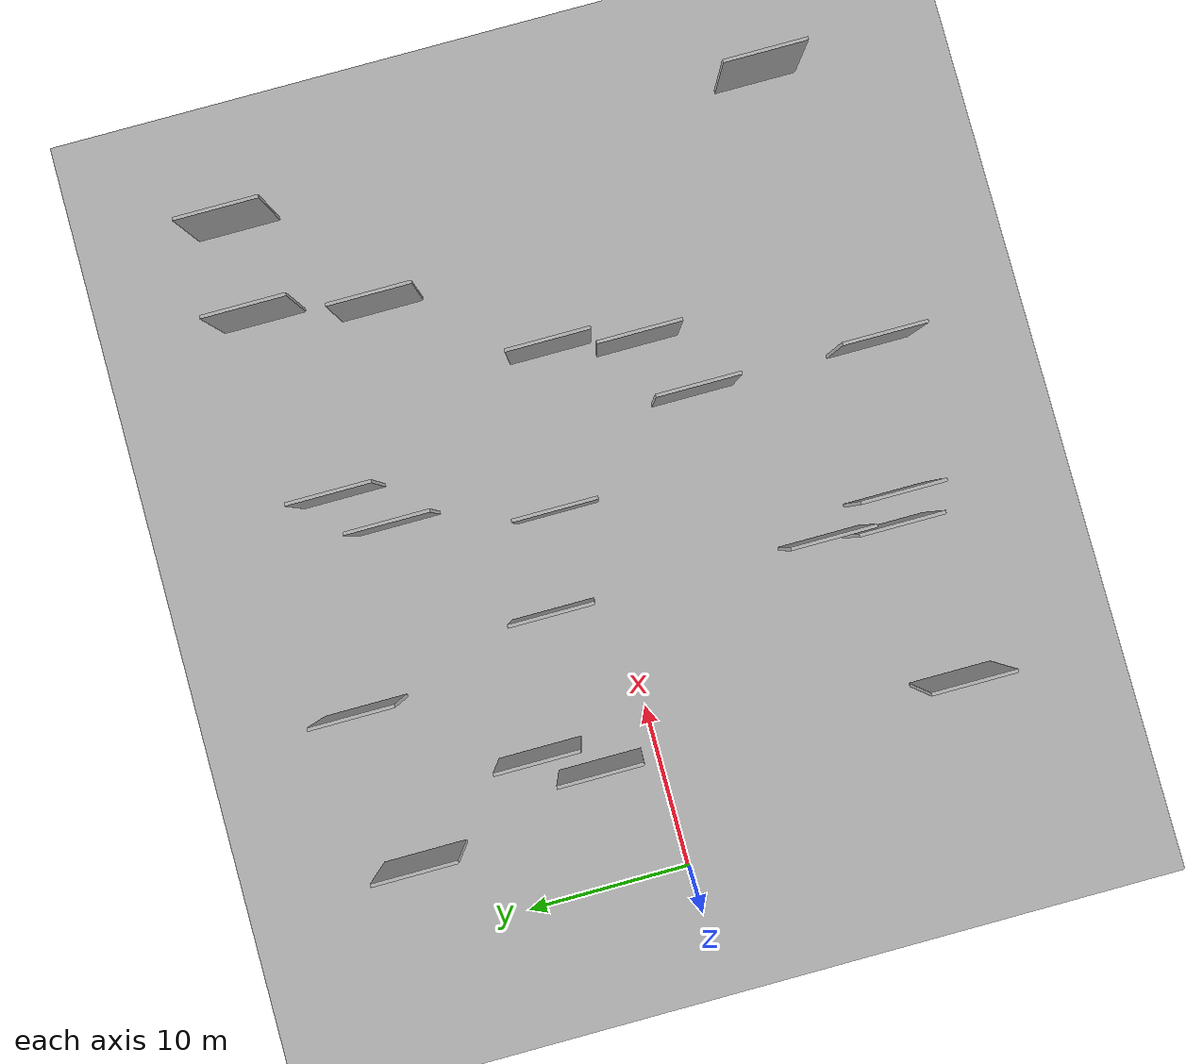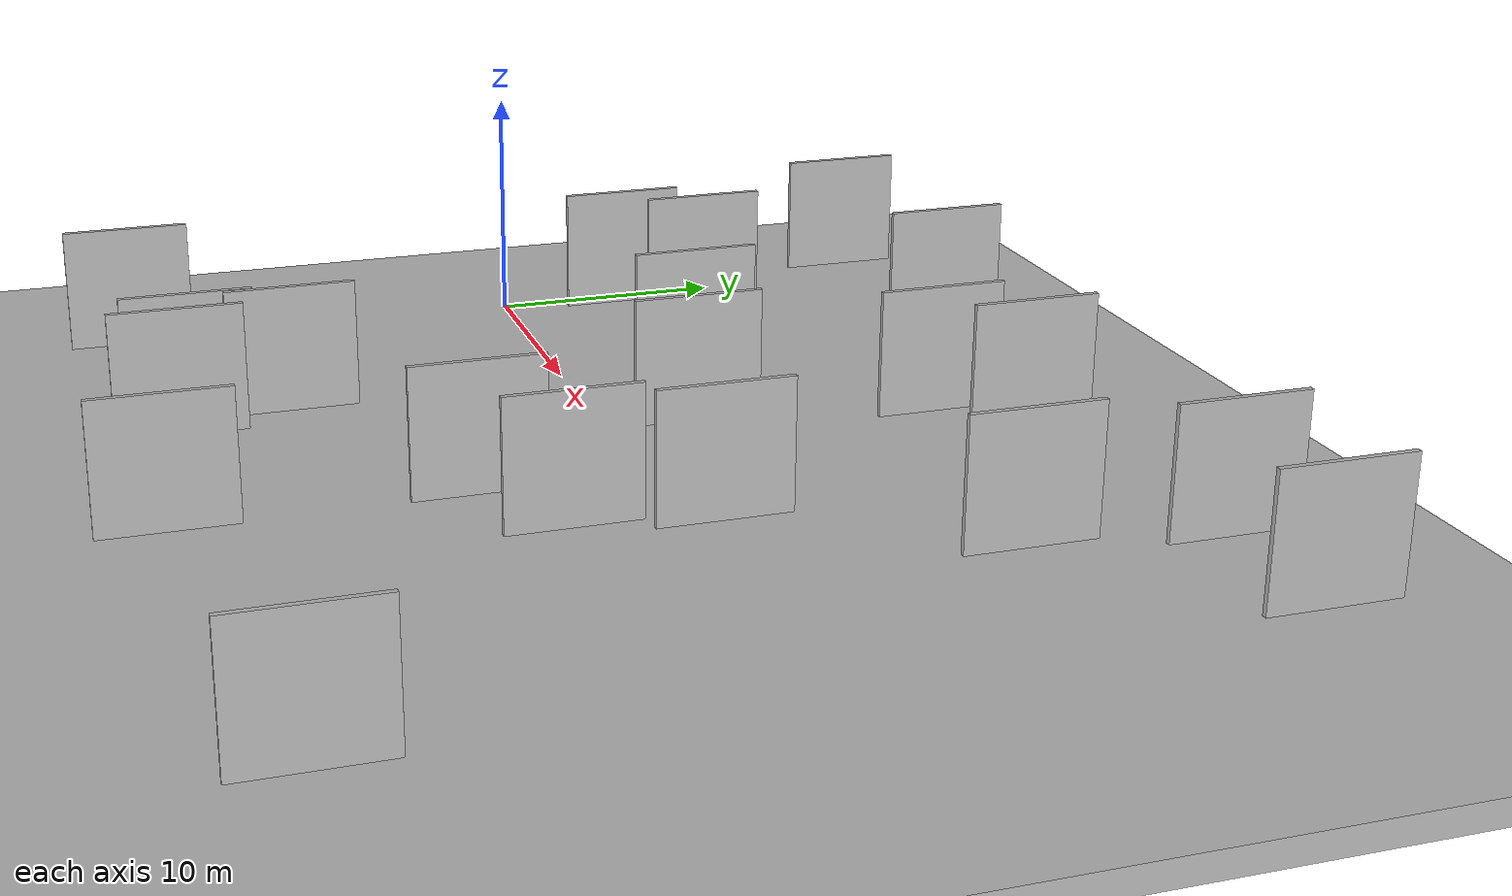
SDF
<?xml version="1.0" encoding="utf-8"?>

<sdf version="1.6">

   <world name="default">

      <gui fullscreen="0">

         <camera name="user_camera">

            <pose>-15 0 4.57585 0 0 0</pose>

            <view_controller>orbit</view_controller>

         </camera>

      </gui>

      <scene>

         <sky>

           <clouds>

             <speed>12</speed>

           </clouds>

         </sky>

         <ambient>0.4 0.4 0.4 1</ambient>

         <background>0.7 0.7 0.7 1</background>

         <shadows>1</shadows>

      </scene>

      <gravity>0 0 -9.8066</gravity>

      <magnetic_field>6e-06 2.3e-05 -4.2e-05</magnetic_field>

      <physics default="0" name="default_physics" type="ode">

         <ode>

            <solver>

               <type>quick</type>

               <iters>10</iters>

               <sor>1.0</sor>

               <use_dynamic_moi_rescaling>0</use_dynamic_moi_rescaling>

            </solver>

            <constraints>

               <cfm>0</cfm>

               <erp>0.2</erp>

               <contact_max_correcting_vel>100</contact_max_correcting_vel>

               <contact_surface_layer>0.001</contact_surface_layer>

            </constraints>

         </ode>

         <max_step_size>0.004</max_step_size>

         <real_time_factor>1</real_time_factor>

         <real_time_update_rate>250</real_time_update_rate>

      </physics>

      <light name="sun" type="directional">

         <cast_shadows>1</cast_shadows>

         <pose>0 0 10 0 0 0</pose>

         <diffuse>0.8 0.8 0.8 1</diffuse>

         <specular>0.2 0.2 0.2 1</specular>

         <attenuation>

            <range>1000</range>

            <constant>0.9</constant>

            <linear>0.01</linear>

            <quadratic>0.001</quadratic>

         </attenuation>

         <direction>-0.5 0.1 -0.9</direction>

      </light>

      <include>

         <name>ground_plane_1</name>

         <uri>model://HANNAS_ground_plane</uri>

         <pose>0 0 0  0 0 0</pose>

      </include>

      <include>

         <name>ground_plane_2</name>

         <uri>model://HANNAS_ground_plane</uri>

         <pose>100 0 0  0 0 0</pose>

      </include>

      <model name="HANNAS_wall_1">

         <static>1</static>

         <pose frame="">16.9462 -16.4166 2.5 0.000000 0.000000 1.570796</pose>

         <link name="link">

            <pose frame="">0 0 2.50 0 0 0</pose>

            <collision name="collision">

               <geometry>

                  <box>

                     <size>5.00 0.2 5.00</size>

                  </box>

               </geometry>

               <max_contacts>10</max_contacts>

               <surface>

                  <contact>

                     <ode/>

                  </contact>

                  <bounce/>

                  <friction>

                     <torsional>

                        <ode/>

                     </torsional>

                     <ode/>

                  </friction>

               </surface>

            </collision>

            <visual name="visual">

               <cast_shadows>0</cast_shadows>

               <geometry>

                  <box>

                     <size>5.00 0.2 5.00</size>

                  </box>

               </geometry>

               <material>

                  <script>

                     <uri>model://HANNAS_wall/materials/scripts</uri>

                     <uri>model://HANNAS_wall/materials/textures</uri>

                     <name>vrc/HANNAS_wall</name>

                  </script>

               </material>

            </visual>

            <self_collide>0</self_collide>

            <enable_wind>0</enable_wind>

            <kinematic>0</kinematic>

         </link>

      </model>

      <model name="HANNAS_wall_2">

         <static>1</static>

         <pose frame="">14.6405 15.9133 2.5 0.000000 0.000000 1.570796</pose>

         <link name="link">

            <pose frame="">0 0 2.50 0 0 0</pose>

            <collision name="collision">

               <geometry>

                  <box>

                     <size>5.00 0.2 5.00</size>

                  </box>

               </geometry>

               <max_contacts>10</max_contacts>

               <surface>

                  <contact>

                     <ode/>

                  </contact>

                  <bounce/>

                  <friction>

                     <torsional>

                        <ode/>

                     </torsional>

                     <ode/>

                  </friction>

               </surface>

            </collision>

            <visual name="visual">

               <cast_shadows>0</cast_shadows>

               <geometry>

                  <box>

                     <size>5.00 0.2 5.00</size>

                  </box>

               </geometry>

               <material>

                  <script>

                     <uri>model://HANNAS_wall/materials/scripts</uri>

                     <uri>model://HANNAS_wall/materials/textures</uri>

                     <name>vrc/HANNAS_wall</name>

                  </script>

               </material>

            </visual>

            <self_collide>0</self_collide>

            <enable_wind>0</enable_wind>

            <kinematic>0</kinematic>

         </link>

      </model>

      <model name="HANNAS_wall_3">

         <static>1</static>

         <pose frame="">32.1124 -0.0720 2.5 0.000000 0.000000 1.570796</pose>

         <link name="link">

            <pose frame="">0 0 2.50 0 0 0</pose>

            <collision name="collision">

               <geometry>

                  <box>

                     <size>5.00 0.2 5.00</size>

                  </box>

               </geometry>

               <max_contacts>10</max_contacts>

               <surface>

                  <contact>

                     <ode/>

                  </contact>

                  <bounce/>

                  <friction>

                     <torsional>

                        <ode/>

                     </torsional>

                     <ode/>

                  </friction>

               </surface>

            </collision>

            <visual name="visual">

               <cast_shadows>0</cast_shadows>

               <geometry>

                  <box>

                     <size>5.00 0.2 5.00</size>

                  </box>

               </geometry>

               <material>

                  <script>

                     <uri>model://HANNAS_wall/materials/scripts</uri>

                     <uri>model://HANNAS_wall/materials/textures</uri>

                     <name>vrc/HANNAS_wall</name>

                  </script>

               </material>

            </visual>

            <self_collide>0</self_collide>

            <enable_wind>0</enable_wind>

            <kinematic>0</kinematic>

         </link>

      </model>

      <model name="HANNAS_wall_4">

         <static>1</static>

         <pose frame="">22.8124 2.0310 2.5 0.000000 0.000000 1.570796</pose>

         <link name="link">

            <pose frame="">0 0 2.50 0 0 0</pose>

            <collision name="collision">

               <geometry>

                  <box>

                     <size>5.00 0.2 5.00</size>

                  </box>

               </geometry>

               <max_contacts>10</max_contacts>

               <surface>

                  <contact>

                     <ode/>

                  </contact>

                  <bounce/>

                  <friction>

                     <torsional>

                        <ode/>

                     </torsional>

                     <ode/>

                  </friction>

               </surface>

            </collision>

            <visual name="visual">

               <cast_shadows>0</cast_shadows>

               <geometry>

                  <box>

                     <size>5.00 0.2 5.00</size>

                  </box>

               </geometry>

               <material>

                  <script>

                     <uri>model://HANNAS_wall/materials/scripts</uri>

                     <uri>model://HANNAS_wall/materials/textures</uri>

                     <name>vrc/HANNAS_wall</name>

                  </script>

               </material>

            </visual>

            <self_collide>0</self_collide>

            <enable_wind>0</enable_wind>

            <kinematic>0</kinematic>

         </link>

      </model>

      <model name="HANNAS_wall_5">

         <static>1</static>

         <pose frame="">17.2191 -12.5391 2.5 0.000000 0.000000 1.570796</pose>

         <link name="link">

            <pose frame="">0 0 2.50 0 0 0</pose>

            <collision name="collision">

               <geometry>

                  <box>

                     <size>5.00 0.2 5.00</size>

                  </box>

               </geometry>

               <max_contacts>10</max_contacts>

               <surface>

                  <contact>

                     <ode/>

                  </contact>

                  <bounce/>

                  <friction>

                     <torsional>

                        <ode/>

                     </torsional>

                     <ode/>

                  </friction>

               </surface>

            </collision>

            <visual name="visual">

               <cast_shadows>0</cast_shadows>

               <geometry>

                  <box>

                     <size>5.00 0.2 5.00</size>

                  </box>

               </geometry>

               <material>

                  <script>

                     <uri>model://HANNAS_wall/materials/scripts</uri>

                     <uri>model://HANNAS_wall/materials/textures</uri>

                     <name>vrc/HANNAS_wall</name>

                  </script>

               </material>

            </visual>

            <self_collide>0</self_collide>

            <enable_wind>0</enable_wind>

            <kinematic>0</kinematic>

         </link>

      </model>

      <model name="HANNAS_wall_6">

         <static>1</static>

         <pose frame="">7.9515 3.4358 2.5 0.000000 0.000000 1.570796</pose>

         <link name="link">

            <pose frame="">0 0 2.50 0 0 0</pose>

            <collision name="collision">

               <geometry>

                  <box>

                     <size>5.00 0.2 5.00</size>

                  </box>

               </geometry>

               <max_contacts>10</max_contacts>

               <surface>

                  <contact>

                     <ode/>

                  </contact>

                  <bounce/>

                  <friction>

                     <torsional>

                        <ode/>

                     </torsional>

                     <ode/>

                  </friction>

               </surface>

            </collision>

            <visual name="visual">

               <cast_shadows>0</cast_shadows>

               <geometry>

                  <box>

                     <size>5.00 0.2 5.00</size>

                  </box>

               </geometry>

               <material>

                  <script>

                     <uri>model://HANNAS_wall/materials/scripts</uri>

                     <uri>model://HANNAS_wall/materials/textures</uri>

                     <name>vrc/HANNAS_wall</name>

                  </script>

               </material>

            </visual>

            <self_collide>0</self_collide>

            <enable_wind>0</enable_wind>

            <kinematic>0</kinematic>

         </link>

      </model>

      <model name="HANNAS_wall_7">

         <static>1</static>

         <pose frame="">18.6666 -16.9869 2.5 0.000000 0.000000 1.570796</pose>

         <link name="link">

            <pose frame="">0 0 2.50 0 0 0</pose>

            <collision name="collision">

               <geometry>

                  <box>

                     <size>5.00 0.2 5.00</size>

                  </box>

               </geometry>

               <max_contacts>10</max_contacts>

               <surface>

                  <contact>

                     <ode/>

                  </contact>

                  <bounce/>

                  <friction>

                     <torsional>

                        <ode/>

                     </torsional>

                     <ode/>

                  </friction>

               </surface>

            </collision>

            <visual name="visual">

               <cast_shadows>0</cast_shadows>

               <geometry>

                  <box>

                     <size>5.00 0.2 5.00</size>

                  </box>

               </geometry>

               <material>

                  <script>

                     <uri>model://HANNAS_wall/materials/scripts</uri>

                     <uri>model://HANNAS_wall/materials/textures</uri>

                     <name>vrc/HANNAS_wall</name>

                  </script>

               </material>

            </visual>

            <self_collide>0</self_collide>

            <enable_wind>0</enable_wind>

            <kinematic>0</kinematic>

         </link>

      </model>

      <model name="HANNAS_wall_8">

         <static>1</static>

         <pose frame="">17.2159 3.7650 2.5 0.000000 0.000000 1.570796</pose>

         <link name="link">

            <pose frame="">0 0 2.50 0 0 0</pose>

            <collision name="collision">

               <geometry>

                  <box>

                     <size>5.00 0.2 5.00</size>

                  </box>

               </geometry>

               <max_contacts>10</max_contacts>

               <surface>

                  <contact>

                     <ode/>

                  </contact>

                  <bounce/>

                  <friction>

                     <torsional>

                        <ode/>

                     </torsional>

                     <ode/>

                  </friction>

               </surface>

            </collision>

            <visual name="visual">

               <cast_shadows>0</cast_shadows>

               <geometry>

                  <box>

                     <size>5.00 0.2 5.00</size>

                  </box>

               </geometry>

               <material>

                  <script>

                     <uri>model://HANNAS_wall/materials/scripts</uri>

                     <uri>model://HANNAS_wall/materials/textures</uri>

                     <name>vrc/HANNAS_wall</name>

                  </script>

               </material>

            </visual>

            <self_collide>0</self_collide>

            <enable_wind>0</enable_wind>

            <kinematic>0</kinematic>

         </link>

      </model>

      <model name="HANNAS_wall_9">

         <static>1</static>

         <pose frame="">24.5792 11.2520 2.5 0.000000 0.000000 1.570796</pose>

         <link name="link">

            <pose frame="">0 0 2.50 0 0 0</pose>

            <collision name="collision">

               <geometry>

                  <box>

                     <size>5.00 0.2 5.00</size>

                  </box>

               </geometry>

               <max_contacts>10</max_contacts>

               <surface>

                  <contact>

                     <ode/>

                  </contact>

                  <bounce/>

                  <friction>

                     <torsional>

                        <ode/>

                     </torsional>

                     <ode/>

                  </friction>

               </surface>

            </collision>

            <visual name="visual">

               <cast_shadows>0</cast_shadows>

               <geometry>

                  <box>

                     <size>5.00 0.2 5.00</size>

                  </box>

               </geometry>

               <material>

                  <script>

                     <uri>model://HANNAS_wall/materials/scripts</uri>

                     <uri>model://HANNAS_wall/materials/textures</uri>

                     <name>vrc/HANNAS_wall</name>

                  </script>

               </material>

            </visual>

            <self_collide>0</self_collide>

            <enable_wind>0</enable_wind>

            <kinematic>0</kinematic>

         </link>

      </model>

      <model name="HANNAS_wall_10">

         <static>1</static>

         <pose frame="">38.4060 15.8887 2.5 0.000000 0.000000 1.570796</pose>

         <link name="link">

            <pose frame="">0 0 2.50 0 0 0</pose>

            <collision name="collision">

               <geometry>

                  <box>

                     <size>5.00 0.2 5.00</size>

                  </box>

               </geometry>

               <max_contacts>10</max_contacts>

               <surface>

                  <contact>

                     <ode/>

                  </contact>

                  <bounce/>

                  <friction>

                     <torsional>

                        <ode/>

                     </torsional>

                     <ode/>

                  </friction>

               </surface>

            </collision>

            <visual name="visual">

               <cast_shadows>0</cast_shadows>

               <geometry>

                  <box>

                     <size>5.00 0.2 5.00</size>

                  </box>

               </geometry>

               <material>

                  <script>

                     <uri>model://HANNAS_wall/materials/scripts</uri>

                     <uri>model://HANNAS_wall/materials/textures</uri>

                     <name>vrc/HANNAS_wall</name>

                  </script>

               </material>

            </visual>

            <self_collide>0</self_collide>

            <enable_wind>0</enable_wind>

            <kinematic>0</kinematic>

         </link>

      </model>

      <model name="HANNAS_wall_11">

         <static>1</static>

         <pose frame="">27.4920 -18.4001 2.5 0.000000 0.000000 1.570796</pose>

         <link name="link">

            <pose frame="">0 0 2.50 0 0 0</pose>

            <collision name="collision">

               <geometry>

                  <box>

                     <size>5.00 0.2 5.00</size>

                  </box>

               </geometry>

               <max_contacts>10</max_contacts>

               <surface>

                  <contact>

                     <ode/>

                  </contact>

                  <bounce/>

                  <friction>

                     <torsional>

                        <ode/>

                     </torsional>

                     <ode/>

                  </friction>

               </surface>

            </collision>

            <visual name="visual">

               <cast_shadows>0</cast_shadows>

               <geometry>

                  <box>

                     <size>5.00 0.2 5.00</size>

                  </box>

               </geometry>

               <material>

                  <script>

                     <uri>model://HANNAS_wall/materials/scripts</uri>

                     <uri>model://HANNAS_wall/materials/textures</uri>

                     <name>vrc/HANNAS_wall</name>

                  </script>

               </material>

            </visual>

            <self_collide>0</self_collide>

            <enable_wind>0</enable_wind>

            <kinematic>0</kinematic>

         </link>

      </model>

      <model name="HANNAS_wall_12">

         <static>1</static>

         <pose frame="">44.1719 15.9756 2.5 0.000000 0.000000 1.570796</pose>

         <link name="link">

            <pose frame="">0 0 2.50 0 0 0</pose>

            <collision name="collision">

               <geometry>

                  <box>

                     <size>5.00 0.2 5.00</size>

                  </box>

               </geometry>

               <max_contacts>10</max_contacts>

               <surface>

                  <contact>

                     <ode/>

                  </contact>

                  <bounce/>

                  <friction>

                     <torsional>

                        <ode/>

                     </torsional>

                     <ode/>

                  </friction>

               </surface>

            </collision>

            <visual name="visual">

               <cast_shadows>0</cast_shadows>

               <geometry>

                  <box>

                     <size>5.00 0.2 5.00</size>

                  </box>

               </geometry>

               <material>

                  <script>

                     <uri>model://HANNAS_wall/materials/scripts</uri>

                     <uri>model://HANNAS_wall/materials/textures</uri>

                     <name>vrc/HANNAS_wall</name>

                  </script>

               </material>

            </visual>

            <self_collide>0</self_collide>

            <enable_wind>0</enable_wind>

            <kinematic>0</kinematic>

         </link>

      </model>

      <model name="HANNAS_wall_13">

         <static>1</static>

         <pose frame="">9.5507 6.6470 2.5 0.000000 0.000000 1.570796</pose>

         <link name="link">

            <pose frame="">0 0 2.50 0 0 0</pose>

            <collision name="collision">

               <geometry>

                  <box>

                     <size>5.00 0.2 5.00</size>

                  </box>

               </geometry>

               <max_contacts>10</max_contacts>

               <surface>

                  <contact>

                     <ode/>

                  </contact>

                  <bounce/>

                  <friction>

                     <torsional>

                        <ode/>

                     </torsional>

                     <ode/>

                  </friction>

               </surface>

            </collision>

            <visual name="visual">

               <cast_shadows>0</cast_shadows>

               <geometry>

                  <box>

                     <size>5.00 0.2 5.00</size>

                  </box>

               </geometry>

               <material>

                  <script>

                     <uri>model://HANNAS_wall/materials/scripts</uri>

                     <uri>model://HANNAS_wall/materials/textures</uri>

                     <name>vrc/HANNAS_wall</name>

                  </script>

               </material>

            </visual>

            <self_collide>0</self_collide>

            <enable_wind>0</enable_wind>

            <kinematic>0</kinematic>

         </link>

      </model>

      <model name="HANNAS_wall_14">

         <static>1</static>

         <pose frame="">5.4799 14.7228 2.5 0.000000 0.000000 1.570796</pose>

         <link name="link">

            <pose frame="">0 0 2.50 0 0 0</pose>

            <collision name="collision">

               <geometry>

                  <box>

                     <size>5.00 0.2 5.00</size>

                  </box>

               </geometry>

               <max_contacts>10</max_contacts>

               <surface>

                  <contact>

                     <ode/>

                  </contact>

                  <bounce/>

                  <friction>

                     <torsional>

                        <ode/>

                     </torsional>

                     <ode/>

                  </friction>

               </surface>

            </collision>

            <visual name="visual">

               <cast_shadows>0</cast_shadows>

               <geometry>

                  <box>

                     <size>5.00 0.2 5.00</size>

                  </box>

               </geometry>

               <material>

                  <script>

                     <uri>model://HANNAS_wall/materials/scripts</uri>

                     <uri>model://HANNAS_wall/materials/textures</uri>

                     <name>vrc/HANNAS_wall</name>

                  </script>

               </material>

            </visual>

            <self_collide>0</self_collide>

            <enable_wind>0</enable_wind>

            <kinematic>0</kinematic>

         </link>

      </model>

      <model name="HANNAS_wall_15">

         <static>1</static>

         <pose frame="">27.4368 -7.5614 2.5 0.000000 0.000000 1.570796</pose>

         <link name="link">

            <pose frame="">0 0 2.50 0 0 0</pose>

            <collision name="collision">

               <geometry>

                  <box>

                     <size>5.00 0.2 5.00</size>

                  </box>

               </geometry>

               <max_contacts>10</max_contacts>

               <surface>

                  <contact>

                     <ode/>

                  </contact>

                  <bounce/>

                  <friction>

                     <torsional>

                        <ode/>

                     </torsional>

                     <ode/>

                  </friction>

               </surface>

            </collision>

            <visual name="visual">

               <cast_shadows>0</cast_shadows>

               <geometry>

                  <box>

                     <size>5.00 0.2 5.00</size>

                  </box>

               </geometry>

               <material>

                  <script>

                     <uri>model://HANNAS_wall/materials/scripts</uri>

                     <uri>model://HANNAS_wall/materials/textures</uri>

                     <name>vrc/HANNAS_wall</name>

                  </script>

               </material>

            </visual>

            <self_collide>0</self_collide>

            <enable_wind>0</enable_wind>

            <kinematic>0</kinematic>

         </link>

      </model>

      <model name="HANNAS_wall_16">

         <static>1</static>

         <pose frame="">7.4451 -17.8723 2.5 0.000000 0.000000 1.570796</pose>

         <link name="link">

            <pose frame="">0 0 2.50 0 0 0</pose>

            <collision name="collision">

               <geometry>

                  <box>

                     <size>5.00 0.2 5.00</size>

                  </box>

               </geometry>

               <max_contacts>10</max_contacts>

               <surface>

                  <contact>

                     <ode/>

                  </contact>

                  <bounce/>

                  <friction>

                     <torsional>

                        <ode/>

                     </torsional>

                     <ode/>

                  </friction>

               </surface>

            </collision>

            <visual name="visual">

               <cast_shadows>0</cast_shadows>

               <geometry>

                  <box>

                     <size>5.00 0.2 5.00</size>

                  </box>

               </geometry>

               <material>

                  <script>

                     <uri>model://HANNAS_wall/materials/scripts</uri>

                     <uri>model://HANNAS_wall/materials/textures</uri>

                     <name>vrc/HANNAS_wall</name>

                  </script>

               </material>

            </visual>

            <self_collide>0</self_collide>

            <enable_wind>0</enable_wind>

            <kinematic>0</kinematic>

         </link>

      </model>

      <model name="HANNAS_wall_17">

         <static>1</static>

         <pose frame="">44.7130 -16.2327 2.5 0.000000 0.000000 1.570796</pose>

         <link name="link">

            <pose frame="">0 0 2.50 0 0 0</pose>

            <collision name="collision">

               <geometry>

                  <box>

                     <size>5.00 0.2 5.00</size>

                  </box>

               </geometry>

               <max_contacts>10</max_contacts>

               <surface>

                  <contact>

                     <ode/>

                  </contact>

                  <bounce/>

                  <friction>

                     <torsional>

                        <ode/>

                     </torsional>

                     <ode/>

                  </friction>

               </surface>

            </collision>

            <visual name="visual">

               <cast_shadows>0</cast_shadows>

               <geometry>

                  <box>

                     <size>5.00 0.2 5.00</size>

                  </box>

               </geometry>

               <material>

                  <script>

                     <uri>model://HANNAS_wall/materials/scripts</uri>

                     <uri>model://HANNAS_wall/materials/textures</uri>

                     <name>vrc/HANNAS_wall</name>

                  </script>

               </material>

            </visual>

            <self_collide>0</self_collide>

            <enable_wind>0</enable_wind>

            <kinematic>0</kinematic>

         </link>

      </model>

      <model name="HANNAS_wall_18">

         <static>1</static>

         <pose frame="">31.2039 -5.1673 2.5 0.000000 0.000000 1.570796</pose>

         <link name="link">

            <pose frame="">0 0 2.50 0 0 0</pose>

            <collision name="collision">

               <geometry>

                  <box>

                     <size>5.00 0.2 5.00</size>

                  </box>

               </geometry>

               <max_contacts>10</max_contacts>

               <surface>

                  <contact>

                     <ode/>

                  </contact>

                  <bounce/>

                  <friction>

                     <torsional>

                        <ode/>

                     </torsional>

                     <ode/>

                  </friction>

               </surface>

            </collision>

            <visual name="visual">

               <cast_shadows>0</cast_shadows>

               <geometry>

                  <box>

                     <size>5.00 0.2 5.00</size>

                  </box>

               </geometry>

               <material>

                  <script>

                     <uri>model://HANNAS_wall/materials/scripts</uri>

                     <uri>model://HANNAS_wall/materials/textures</uri>

                     <name>vrc/HANNAS_wall</name>

                  </script>

               </material>

            </visual>

            <self_collide>0</self_collide>

            <enable_wind>0</enable_wind>

            <kinematic>0</kinematic>

         </link>

      </model>

      <model name="HANNAS_wall_19">

         <static>1</static>

         <pose frame="">27.0146 13.9757 2.5 0.000000 0.000000 1.570796</pose>

         <link name="link">

            <pose frame="">0 0 2.50 0 0 0</pose>

            <collision name="collision">

               <geometry>

                  <box>

                     <size>5.00 0.2 5.00</size>

                  </box>

               </geometry>

               <max_contacts>10</max_contacts>

               <surface>

                  <contact>

                     <ode/>

                  </contact>

                  <bounce/>

                  <friction>

                     <torsional>

                        <ode/>

                     </torsional>

                     <ode/>

                  </friction>

               </surface>

            </collision>

            <visual name="visual">

               <cast_shadows>0</cast_shadows>

               <geometry>

                  <box>

                     <size>5.00 0.2 5.00</size>

                  </box>

               </geometry>

               <material>

                  <script>

                     <uri>model://HANNAS_wall/materials/scripts</uri>

                     <uri>model://HANNAS_wall/materials/textures</uri>

                     <name>vrc/HANNAS_wall</name>

                  </script>

               </material>

            </visual>

            <self_collide>0</self_collide>

            <enable_wind>0</enable_wind>

            <kinematic>0</kinematic>

         </link>

      </model>

      <model name="HANNAS_wall_20">

         <static>1</static>

         <pose frame="">37.2299 8.9301 2.5 0.000000 0.000000 1.570796</pose>

         <link name="link">

            <pose frame="">0 0 2.50 0 0 0</pose>

            <collision name="collision">

               <geometry>

                  <box>

                     <size>5.00 0.2 5.00</size>

                  </box>

               </geometry>

               <max_contacts>10</max_contacts>

               <surface>

                  <contact>

                     <ode/>

                  </contact>

                  <bounce/>

                  <friction>

                     <torsional>

                        <ode/>

                     </torsional>

                     <ode/>

                  </friction>

               </surface>

            </collision>

            <visual name="visual">

               <cast_shadows>0</cast_shadows>

               <geometry>

                  <box>

                     <size>5.00 0.2 5.00</size>

                  </box>

               </geometry>

               <material>

                  <script>

                     <uri>model://HANNAS_wall/materials/scripts</uri>

                     <uri>model://HANNAS_wall/materials/textures</uri>

                     <name>vrc/HANNAS_wall</name>

                  </script>

               </material>

            </visual>

            <self_collide>0</self_collide>

            <enable_wind>0</enable_wind>

            <kinematic>0</kinematic>

         </link>

      </model>

   </world>

</sdf>

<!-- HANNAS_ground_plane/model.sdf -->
<sdf version="1.4">
<model name="HANNAS_ground_plane">
  <static>true</static>
    <link name="link">
      <collision name="collision">
        <geometry>
          <plane>
            <normal>0 0 1</normal>
            <size>1000 1000</size>
          </plane>
        </geometry>
        <surface>
          <friction>
            <ode>
              <mu>100</mu>
              <mu2>50</mu2>
            </ode>
          </friction>
        </surface>
      </collision>
      <visual name="visual">
        <cast_shadows>false</cast_shadows>
        <geometry>
          <plane>
            <normal>0 0 1</normal>
            <size>1000 1000</size>
          </plane>
        </geometry>
        <material>
          <script>
            <uri>model://HANNAS_ground_plane/materials/scripts/HANNAS_ground_plane.material</uri>
	    <uri>model://HANNAS_ground_plane/materials/textures</uri>
            <name>HANNASGroundPlane/Image</name>
          </script>
        </material>
      </visual>
    </link>
  </model>
</sdf>
